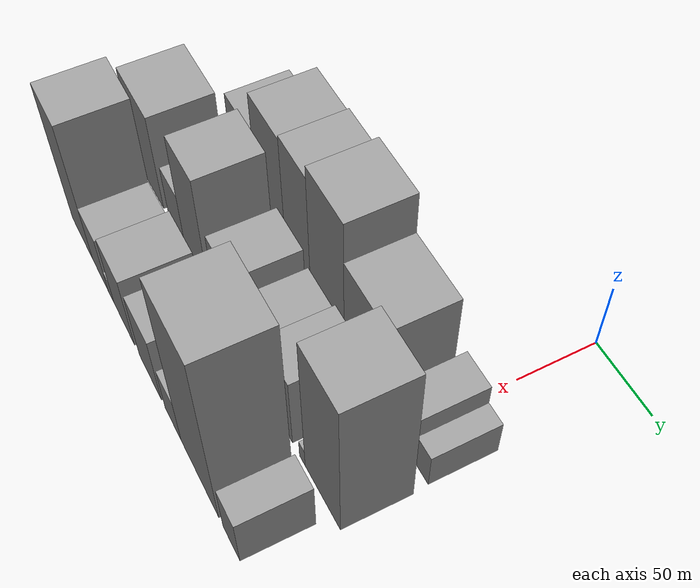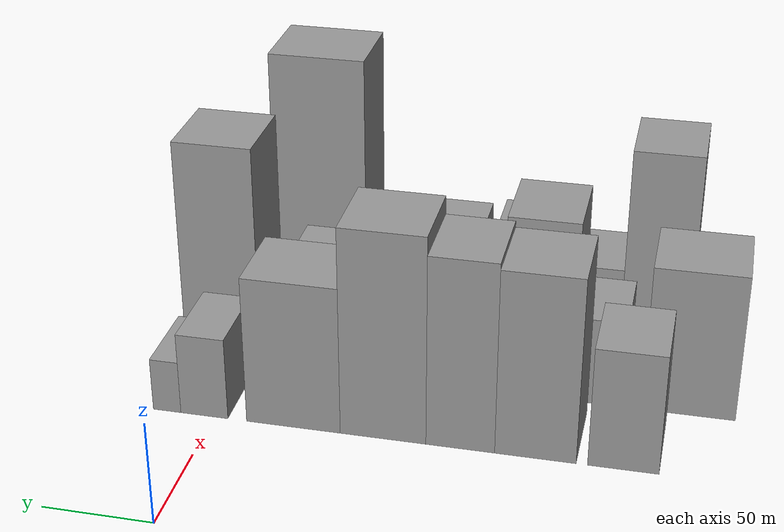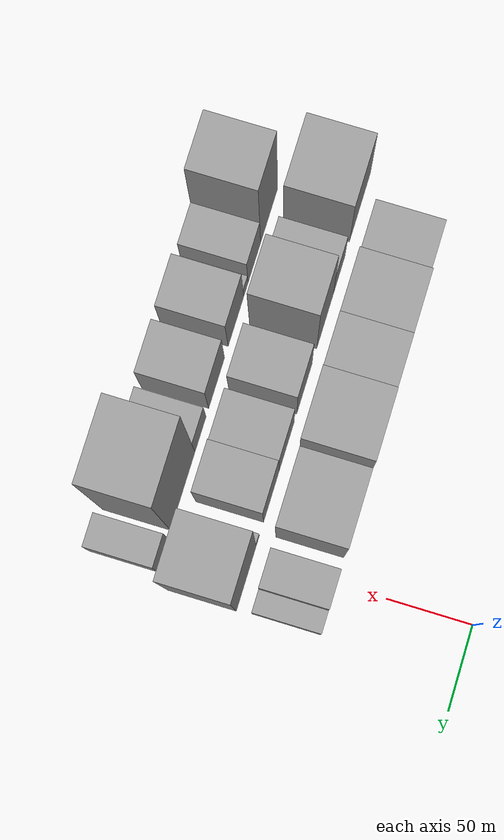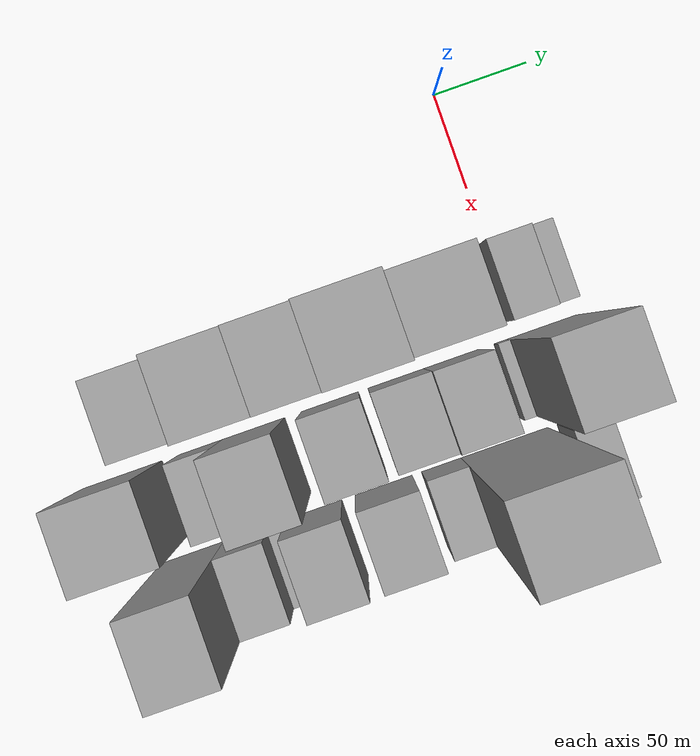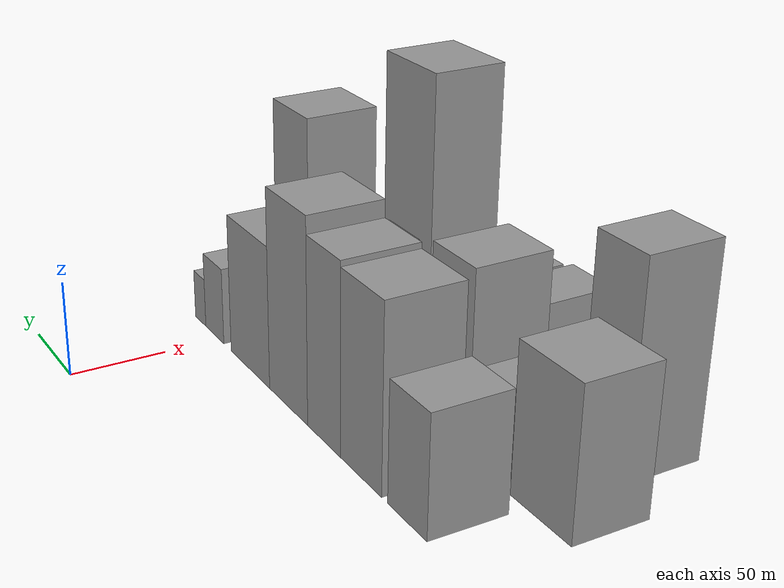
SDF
<sdf version="1.6">
 <world name="default">
  <model name="building_9">
   <static>1</static>
   <pose>100.0000 -187.4194 0 0.000000 0.000000 0.000000</pose>
   <link name="link">
    <pose>0 0 30.00 0 0 0</pose>
    <collision name="collision"><geometry><box><size>40.0000 31.2924 60.0000</size></box></geometry></collision>
    <visual name="visual">
     <cast_shadows>0</cast_shadows>
     <geometry><box><size>40.0000 31.2924 60.0000</size></box></geometry>
     <material>
      <script>
       <uri>model://grey_wall/materials/scripts</uri>
       <uri>model://grey_wall/materials/textures</uri>
       <name>vrc/grey_wall</name>
      </script>
     </material>
    </visual>
   </link>
  </model>
  <model name="building_10">
   <static>1</static>
   <pose>100.0000 -148.5886 0 0.000000 0.000000 0.000000</pose>
   <link name="link">
    <pose>0 0 46.50 0 0 0</pose>
    <collision name="collision"><geometry><box><size>40.0000 36.3691 93.0000</size></box></geometry></collision>
    <visual name="visual">
     <cast_shadows>0</cast_shadows>
     <geometry><box><size>40.0000 36.3691 93.0000</size></box></geometry>
     <material>
      <script>
       <uri>model://grey_wall/materials/scripts</uri>
       <uri>model://grey_wall/materials/textures</uri>
       <name>vrc/grey_wall</name>
      </script>
     </material>
    </visual>
   </link>
  </model>
  <model name="building_11">
   <static>1</static>
   <pose>100.0000 -114.7853 0 0.000000 0.000000 0.000000</pose>
   <link name="link">
    <pose>0 0 48.00 0 0 0</pose>
    <collision name="collision"><geometry><box><size>40.0000 31.2376 96.0000</size></box></geometry></collision>
    <visual name="visual">
     <cast_shadows>0</cast_shadows>
     <geometry><box><size>40.0000 31.2376 96.0000</size></box></geometry>
     <material>
      <script>
       <uri>model://grey_wall/materials/scripts</uri>
       <uri>model://grey_wall/materials/textures</uri>
       <name>vrc/grey_wall</name>
      </script>
     </material>
    </visual>
   </link>
  </model>
  <model name="building_12">
   <static>1</static>
   <pose>100.0000 -79.3528 0 0.000000 0.000000 0.000000</pose>
   <link name="link">
    <pose>0 0 52.50 0 0 0</pose>
    <collision name="collision"><geometry><box><size>40.0000 39.6273 105.0000</size></box></geometry></collision>
    <visual name="visual">
     <cast_shadows>0</cast_shadows>
     <geometry><box><size>40.0000 39.6273 105.0000</size></box></geometry>
     <material>
      <script>
       <uri>model://grey_wall/materials/scripts</uri>
       <uri>model://grey_wall/materials/textures</uri>
       <name>vrc/grey_wall</name>
      </script>
     </material>
    </visual>
   </link>
  </model>
  <model name="building_13">
   <static>1</static>
   <pose>100.0000 -37.3916 0 0.000000 0.000000 0.000000</pose>
   <link name="link">
    <pose>0 0 37.50 0 0 0</pose>
    <collision name="collision"><geometry><box><size>40.0000 44.2951 75.0000</size></box></geometry></collision>
    <visual name="visual">
     <cast_shadows>0</cast_shadows>
     <geometry><box><size>40.0000 44.2951 75.0000</size></box></geometry>
     <material>
      <script>
       <uri>model://grey_wall/materials/scripts</uri>
       <uri>model://grey_wall/materials/textures</uri>
       <name>vrc/grey_wall</name>
      </script>
     </material>
    </visual>
   </link>
  </model>
  <model name="building_14">
   <static>1</static>
   <pose>100.0000 5.1237 0 0.000000 0.000000 0.000000</pose>
   <link name="link">
    <pose>0 0 21.00 0 0 0</pose>
    <collision name="collision"><geometry><box><size>40.0000 22.7354 42.0000</size></box></geometry></collision>
    <visual name="visual">
     <cast_shadows>0</cast_shadows>
     <geometry><box><size>40.0000 22.7354 42.0000</size></box></geometry>
     <material>
      <script>
       <uri>model://grey_wall/materials/scripts</uri>
       <uri>model://grey_wall/materials/textures</uri>
       <name>vrc/grey_wall</name>
      </script>
     </material>
    </visual>
   </link>
  </model>
  <model name="building_15">
   <static>1</static>
   <pose>100.0000 23.2030 0 0.000000 0.000000 0.000000</pose>
   <link name="link">
    <pose>0 0 13.50 0 0 0</pose>
    <collision name="collision"><geometry><box><size>40.0000 13.4233 27.0000</size></box></geometry></collision>
    <visual name="visual">
     <cast_shadows>0</cast_shadows>
     <geometry><box><size>40.0000 13.4233 27.0000</size></box></geometry>
     <material>
      <script>
       <uri>model://grey_wall/materials/scripts</uri>
       <uri>model://grey_wall/materials/textures</uri>
       <name>vrc/grey_wall</name>
      </script>
     </material>
    </visual>
   </link>
  </model>
  <model name="building_38">
   <static>1</static>
   <pose>149.0000 -212.6889 0 0.000000 0.000000 0.000000</pose>
   <link name="link">
    <pose>0 0 37.50 0 0 0</pose>
    <collision name="collision"><geometry><box><size>40.0000 42.5914 75.0000</size></box></geometry></collision>
    <visual name="visual">
     <cast_shadows>0</cast_shadows>
     <geometry><box><size>40.0000 42.5914 75.0000</size></box></geometry>
     <material>
      <script>
       <uri>model://grey_wall/materials/scripts</uri>
       <uri>model://grey_wall/materials/textures</uri>
       <name>vrc/grey_wall</name>
      </script>
     </material>
    </visual>
   </link>
  </model>
  <model name="building_39">
   <static>1</static>
   <pose>149.0000 -170.6452 0 0.000000 0.000000 0.000000</pose>
   <link name="link">
    <pose>0 0 22.50 0 0 0</pose>
    <collision name="collision"><geometry><box><size>40.0000 23.4961 45.0000</size></box></geometry></collision>
    <visual name="visual">
     <cast_shadows>0</cast_shadows>
     <geometry><box><size>40.0000 23.4961 45.0000</size></box></geometry>
     <material>
      <script>
       <uri>model://grey_wall/materials/scripts</uri>
       <uri>model://grey_wall/materials/textures</uri>
       <name>vrc/grey_wall</name>
      </script>
     </material>
    </visual>
   </link>
  </model>
  <model name="building_40">
   <static>1</static>
   <pose>149.0000 -142.1918 0 0.000000 0.000000 0.000000</pose>
   <link name="link">
    <pose>0 0 46.50 0 0 0</pose>
    <collision name="collision"><geometry><box><size>40.0000 33.4107 93.0000</size></box></geometry></collision>
    <visual name="visual">
     <cast_shadows>0</cast_shadows>
     <geometry><box><size>40.0000 33.4107 93.0000</size></box></geometry>
     <material>
      <script>
       <uri>model://grey_wall/materials/scripts</uri>
       <uri>model://grey_wall/materials/textures</uri>
       <name>vrc/grey_wall</name>
      </script>
     </material>
    </visual>
   </link>
  </model>
  <model name="building_41">
   <static>1</static>
   <pose>149.0000 -101.2283 0 0.000000 0.000000 0.000000</pose>
   <link name="link">
    <pose>0 0 30.00 0 0 0</pose>
    <collision name="collision"><geometry><box><size>40.0000 30.5162 60.0000</size></box></geometry></collision>
    <visual name="visual">
     <cast_shadows>0</cast_shadows>
     <geometry><box><size>40.0000 30.5162 60.0000</size></box></geometry>
     <material>
      <script>
       <uri>model://grey_wall/materials/scripts</uri>
       <uri>model://grey_wall/materials/textures</uri>
       <name>vrc/grey_wall</name>
      </script>
     </material>
    </visual>
   </link>
  </model>
  <model name="building_42">
   <static>1</static>
   <pose>149.0000 -65.9850 0 0.000000 0.000000 0.000000</pose>
   <link name="link">
    <pose>0 0 25.50 0 0 0</pose>
    <collision name="collision"><geometry><box><size>40.0000 29.9704 51.0000</size></box></geometry></collision>
    <visual name="visual">
     <cast_shadows>0</cast_shadows>
     <geometry><box><size>40.0000 29.9704 51.0000</size></box></geometry>
     <material>
      <script>
       <uri>model://grey_wall/materials/scripts</uri>
       <uri>model://grey_wall/materials/textures</uri>
       <name>vrc/grey_wall</name>
      </script>
     </material>
    </visual>
   </link>
  </model>
  <model name="building_43">
   <static>1</static>
   <pose>149.0000 -36.1388 0 0.000000 0.000000 0.000000</pose>
   <link name="link">
    <pose>0 0 28.50 0 0 0</pose>
    <collision name="collision"><geometry><box><size>40.0000 29.7221 57.0000</size></box></geometry></collision>
    <visual name="visual">
     <cast_shadows>0</cast_shadows>
     <geometry><box><size>40.0000 29.7221 57.0000</size></box></geometry>
     <material>
      <script>
       <uri>model://grey_wall/materials/scripts</uri>
       <uri>model://grey_wall/materials/textures</uri>
       <name>vrc/grey_wall</name>
      </script>
     </material>
    </visual>
   </link>
  </model>
  <model name="building_44">
   <static>1</static>
   <pose>149.0000 -10.1473 0 0.000000 0.000000 0.000000</pose>
   <link name="link">
    <pose>0 0 7.50 0 0 0</pose>
    <collision name="collision"><geometry><box><size>40.0000 6.2609 15.0000</size></box></geometry></collision>
    <visual name="visual">
     <cast_shadows>0</cast_shadows>
     <geometry><box><size>40.0000 6.2609 15.0000</size></box></geometry>
     <material>
      <script>
       <uri>model://grey_wall/materials/scripts</uri>
       <uri>model://grey_wall/materials/textures</uri>
       <name>vrc/grey_wall</name>
      </script>
     </material>
    </visual>
   </link>
  </model>
  <model name="building_45">
   <static>1</static>
   <pose>149.0000 12.0057 0 0.000000 0.000000 0.000000</pose>
   <link name="link">
    <pose>0 0 57.00 0 0 0</pose>
    <collision name="collision"><geometry><box><size>40.0000 38.0451 114.0000</size></box></geometry></collision>
    <visual name="visual">
     <cast_shadows>0</cast_shadows>
     <geometry><box><size>40.0000 38.0451 114.0000</size></box></geometry>
     <material>
      <script>
       <uri>model://grey_wall/materials/scripts</uri>
       <uri>model://grey_wall/materials/textures</uri>
       <name>vrc/grey_wall</name>
      </script>
     </material>
    </visual>
   </link>
  </model>
  <model name="building_69">
   <static>1</static>
   <pose>198.0000 -192.3713 0 0.000000 0.000000 0.000000</pose>
   <link name="link">
    <pose>0 0 54.00 0 0 0</pose>
    <collision name="collision"><geometry><box><size>40.0000 33.3005 108.0000</size></box></geometry></collision>
    <visual name="visual">
     <cast_shadows>0</cast_shadows>
     <geometry><box><size>40.0000 33.3005 108.0000</size></box></geometry>
     <material>
      <script>
       <uri>model://grey_wall/materials/scripts</uri>
       <uri>model://grey_wall/materials/textures</uri>
       <name>vrc/grey_wall</name>
      </script>
     </material>
    </visual>
   </link>
  </model>
  <model name="building_70">
   <static>1</static>
   <pose>198.0000 -163.3544 0 0.000000 0.000000 0.000000</pose>
   <link name="link">
    <pose>0 0 22.50 0 0 0</pose>
    <collision name="collision"><geometry><box><size>40.0000 24.7333 45.0000</size></box></geometry></collision>
    <visual name="visual">
     <cast_shadows>0</cast_shadows>
     <geometry><box><size>40.0000 24.7333 45.0000</size></box></geometry>
     <material>
      <script>
       <uri>model://grey_wall/materials/scripts</uri>
       <uri>model://grey_wall/materials/textures</uri>
       <name>vrc/grey_wall</name>
      </script>
     </material>
    </visual>
   </link>
  </model>
  <model name="building_71">
   <static>1</static>
   <pose>198.0000 -146.6509 0 0.000000 0.000000 0.000000</pose>
   <link name="link">
    <pose>0 0 9.00 0 0 0</pose>
    <collision name="collision"><geometry><box><size>40.0000 8.6737 18.0000</size></box></geometry></collision>
    <visual name="visual">
     <cast_shadows>0</cast_shadows>
     <geometry><box><size>40.0000 8.6737 18.0000</size></box></geometry>
     <material>
      <script>
       <uri>model://grey_wall/materials/scripts</uri>
       <uri>model://grey_wall/materials/textures</uri>
       <name>vrc/grey_wall</name>
      </script>
     </material>
    </visual>
   </link>
  </model>
  <model name="building_72">
   <static>1</static>
   <pose>198.0000 -127.2018 0 0.000000 0.000000 0.000000</pose>
   <link name="link">
    <pose>0 0 28.50 0 0 0</pose>
    <collision name="collision"><geometry><box><size>40.0000 30.2246 57.0000</size></box></geometry></collision>
    <visual name="visual">
     <cast_shadows>0</cast_shadows>
     <geometry><box><size>40.0000 30.2246 57.0000</size></box></geometry>
     <material>
      <script>
       <uri>model://grey_wall/materials/scripts</uri>
       <uri>model://grey_wall/materials/textures</uri>
       <name>vrc/grey_wall</name>
      </script>
     </material>
    </visual>
   </link>
  </model>
  <model name="building_73">
   <static>1</static>
   <pose>198.0000 -89.7630 0 0.000000 0.000000 0.000000</pose>
   <link name="link">
    <pose>0 0 27.00 0 0 0</pose>
    <collision name="collision"><geometry><box><size>40.0000 30.6530 54.0000</size></box></geometry></collision>
    <visual name="visual">
     <cast_shadows>0</cast_shadows>
     <geometry><box><size>40.0000 30.6530 54.0000</size></box></geometry>
     <material>
      <script>
       <uri>model://grey_wall/materials/scripts</uri>
       <uri>model://grey_wall/materials/textures</uri>
       <name>vrc/grey_wall</name>
      </script>
     </material>
    </visual>
   </link>
  </model>
  <model name="building_74">
   <static>1</static>
   <pose>198.0000 -58.8186 0 0.000000 0.000000 0.000000</pose>
   <link name="link">
    <pose>0 0 18.00 0 0 0</pose>
    <collision name="collision"><geometry><box><size>40.0000 21.2358 36.0000</size></box></geometry></collision>
    <visual name="visual">
     <cast_shadows>0</cast_shadows>
     <geometry><box><size>40.0000 21.2358 36.0000</size></box></geometry>
     <material>
      <script>
       <uri>model://grey_wall/materials/scripts</uri>
       <uri>model://grey_wall/materials/textures</uri>
       <name>vrc/grey_wall</name>
      </script>
     </material>
    </visual>
   </link>
  </model>
  <model name="building_75">
   <static>1</static>
   <pose>198.0000 -24.9115 0 0.000000 0.000000 0.000000</pose>
   <link name="link">
    <pose>0 0 70.50 0 0 0</pose>
    <collision name="collision"><geometry><box><size>40.0000 46.5785 141.0000</size></box></geometry></collision>
    <visual name="visual">
     <cast_shadows>0</cast_shadows>
     <geometry><box><size>40.0000 46.5785 141.0000</size></box></geometry>
     <material>
      <script>
       <uri>model://grey_wall/materials/scripts</uri>
       <uri>model://grey_wall/materials/textures</uri>
       <name>vrc/grey_wall</name>
      </script>
     </material>
    </visual>
   </link>
  </model>
  <model name="building_76">
   <static>1</static>
   <pose>198.0000 13.1556 0 0.000000 0.000000 0.000000</pose>
   <link name="link">
    <pose>0 0 19.50 0 0 0</pose>
    <collision name="collision"><geometry><box><size>40.0000 19.5557 39.0000</size></box></geometry></collision>
    <visual name="visual">
     <cast_shadows>0</cast_shadows>
     <geometry><box><size>40.0000 19.5557 39.0000</size></box></geometry>
     <material>
      <script>
       <uri>model://grey_wall/materials/scripts</uri>
       <uri>model://grey_wall/materials/textures</uri>
       <name>vrc/grey_wall</name>
      </script>
     </material>
    </visual>
   </link>
  </model>
 </world>
</sdf>
